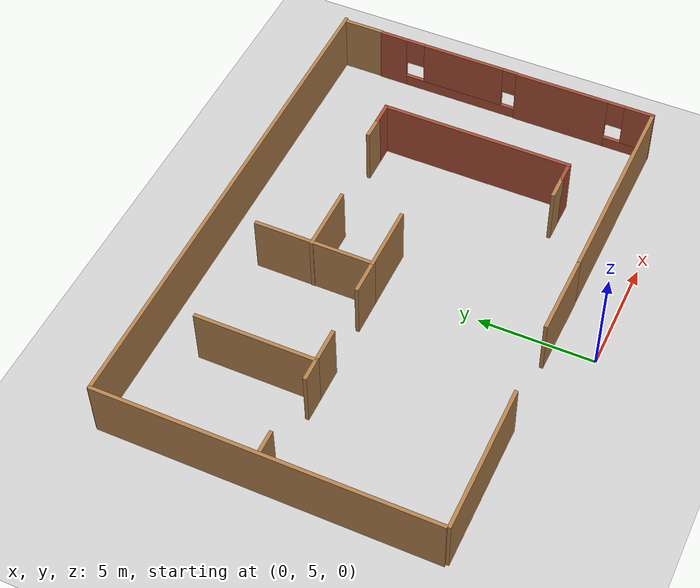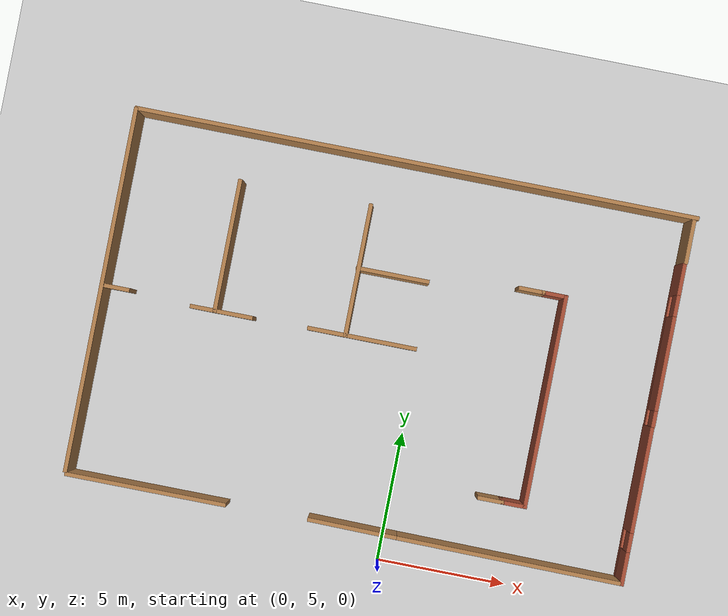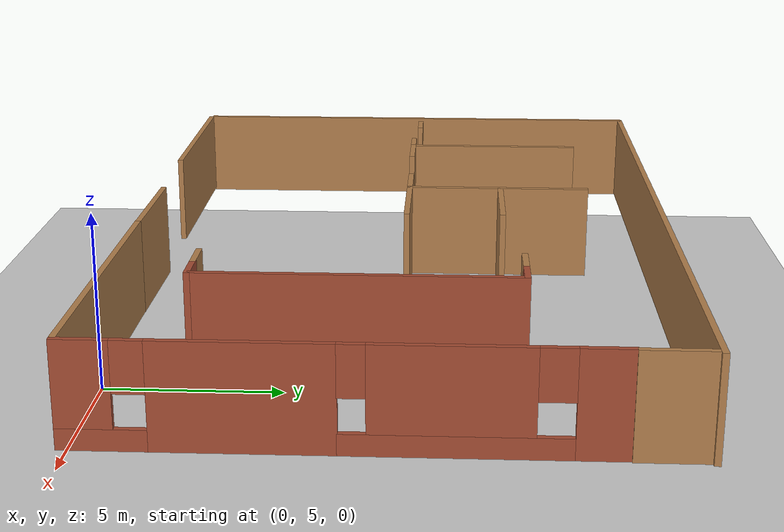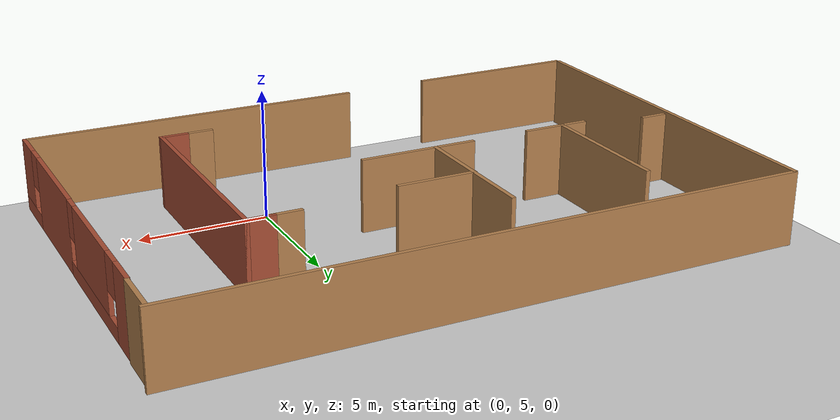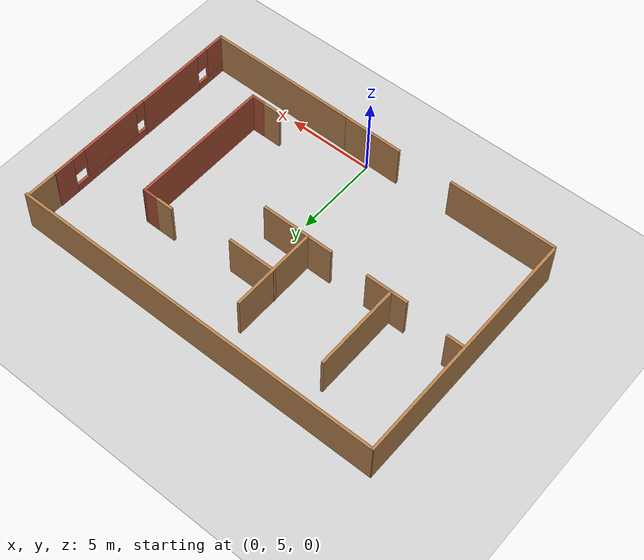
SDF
<sdf version="1.7">
 <world name="default">
  <model name="ground_plane">
   <static>1</static>
   <link name="link">
    <collision name="collision">
     <geometry><plane><normal>0 0 1</normal><size>100 100</size></plane></geometry>
     <surface><friction><ode><mu>100</mu><mu2>50</mu2></ode></friction></surface>
    </collision>
    <visual name="visual">
     <cast_shadows>0</cast_shadows>
     <geometry><plane><normal>0 0 1</normal><size>100 100</size></plane></geometry>
     <material>
      <script><uri>file://media/materials/scripts/gazebo.material</uri><name>Gazebo/Grey</name></script>
     </material>
    </visual>
   </link>
  </model>
  <model name="cafe_1st_floor">
   <link name="Wall_14">
    <pose>10.2327 -3.02422 -0.119425 0 0 -1.56964</pose>
    <visual name="Wall_14_Visual_0">
     <pose>-0.989557 0 1.25 0 -0 0</pose>
     <geometry><box><size>3.98617 0.15 2.5</size></box></geometry>
     <material>
      <script><uri>file://media/materials/scripts/gazebo.material</uri><name>Gazebo/Bricks</name></script>
      <ambient>1 1 1 1</ambient>
      <shader type="pixel"/>
     </material>
     <meta><layer>0</layer></meta>
    </visual>
    <visual name="Wall_14_Visual_2">
     <pose>2.35186 0 1.5 0 -0 0</pose>
     <geometry><box><size>1.26156 0.15 2</size></box></geometry>
     <material>
      <script><uri>file://media/materials/scripts/gazebo.material</uri><name>Gazebo/Bricks</name></script>
      <ambient>1 1 1 1</ambient>
      <shader type="pixel"/>
     </material>
     <meta><layer>0</layer></meta>
    </visual>
    <visual name="Wall_14_Visual_3">
     <pose>1.36231 0 1.9 0 -0 0</pose>
     <geometry><box><size>0.717555 0.15 1.2</size></box></geometry>
     <material>
      <script><uri>file://media/materials/scripts/gazebo.material</uri><name>Gazebo/Bricks</name></script>
      <ambient>1 1 1 1</ambient>
      <shader type="pixel"/>
     </material>
     <meta><layer>0</layer></meta>
    </visual>
    <visual name="Wall_14_Visual_1">
     <pose>1.99308 0 0.25 0 -0 0</pose>
     <geometry><box><size>1.97911 0.15 0.5</size></box></geometry>
     <material>
      <script><uri>file://media/materials/scripts/gazebo.material</uri><name>Gazebo/Bricks</name></script>
      <ambient>1 1 1 1</ambient>
      <shader type="pixel"/>
     </material>
     <meta><layer>0</layer></meta>
    </visual>
    <collision name="Wall_14_Collision_1">
     <pose>1.99308 0 0.25 0 -0 0</pose>
     <geometry><box><size>1.97911 0.15 0.5</size></box></geometry>
     <surface>
      <friction>
       <ode><mu>1</mu><mu2>1</mu2><fdir1>0 0 0</fdir1><slip1>0</slip1><slip2>0</slip2></ode>
       <torsional>
        <coefficient>1</coefficient>
        <patch_radius>0</patch_radius>
        <surface_radius>0</surface_radius>
        <use_patch_radius>1</use_patch_radius>
        <ode><slip>0</slip></ode>
       </torsional>
      </friction>
      <bounce><restitution_coefficient>0</restitution_coefficient><threshold>1e+06</threshold></bounce>
      <contact>
       <collide_without_contact>0</collide_without_contact>
       <collide_without_contact_bitmask>1</collide_without_contact_bitmask>
       <collide_bitmask>1</collide_bitmask>
       <ode>
        <soft_cfm>0</soft_cfm>
        <soft_erp>0.2</soft_erp>
        <kp>1e+13</kp>
        <kd>1</kd>
        <max_vel>0.01</max_vel>
        <min_depth>0</min_depth>
       </ode>
       <bullet>
        <split_impulse>1</split_impulse>
        <split_impulse_penetration_threshold>-0.01</split_impulse_penetration_threshold>
        <soft_cfm>0</soft_cfm>
        <soft_erp>0.2</soft_erp>
        <kp>1e+13</kp>
        <kd>1</kd>
       </bullet>
      </contact>
     </surface>
    </collision>
    <collision name="Wall_14_Collision_3">
     <pose>1.36231 0 1.9 0 -0 0</pose>
     <geometry><box><size>0.717555 0.15 1.2</size></box></geometry>
     <surface>
      <friction>
       <ode><mu>1</mu><mu2>1</mu2><fdir1>0 0 0</fdir1><slip1>0</slip1><slip2>0</slip2></ode>
       <torsional>
        <coefficient>1</coefficient>
        <patch_radius>0</patch_radius>
        <surface_radius>0</surface_radius>
        <use_patch_radius>1</use_patch_radius>
        <ode><slip>0</slip></ode>
       </torsional>
      </friction>
      <bounce><restitution_coefficient>0</restitution_coefficient><threshold>1e+06</threshold></bounce>
      <contact>
       <collide_without_contact>0</collide_without_contact>
       <collide_without_contact_bitmask>1</collide_without_contact_bitmask>
       <collide_bitmask>1</collide_bitmask>
       <ode>
        <soft_cfm>0</soft_cfm>
        <soft_erp>0.2</soft_erp>
        <kp>1e+13</kp>
        <kd>1</kd>
        <max_vel>0.01</max_vel>
        <min_depth>0</min_depth>
       </ode>
       <bullet>
        <split_impulse>1</split_impulse>
        <split_impulse_penetration_threshold>-0.01</split_impulse_penetration_threshold>
        <soft_cfm>0</soft_cfm>
        <soft_erp>0.2</soft_erp>
        <kp>1e+13</kp>
        <kd>1</kd>
       </bullet>
      </contact>
     </surface>
    </collision>
    <collision name="Wall_14_Collision_0">
     <pose>-0.989557 0 1.25 0 -0 0</pose>
     <geometry><box><size>3.98617 0.15 2.5</size></box></geometry>
     <surface>
      <friction>
       <ode><mu>1</mu><mu2>1</mu2><fdir1>0 0 0</fdir1><slip1>0</slip1><slip2>0</slip2></ode>
       <torsional>
        <coefficient>1</coefficient>
        <patch_radius>0</patch_radius>
        <surface_radius>0</surface_radius>
        <use_patch_radius>1</use_patch_radius>
        <ode><slip>0</slip></ode>
       </torsional>
      </friction>
      <bounce><restitution_coefficient>0</restitution_coefficient><threshold>1e+06</threshold></bounce>
      <contact>
       <collide_without_contact>0</collide_without_contact>
       <collide_without_contact_bitmask>1</collide_without_contact_bitmask>
       <collide_bitmask>1</collide_bitmask>
       <ode>
        <soft_cfm>0</soft_cfm>
        <soft_erp>0.2</soft_erp>
        <kp>1e+13</kp>
        <kd>1</kd>
        <max_vel>0.01</max_vel>
        <min_depth>0</min_depth>
       </ode>
       <bullet>
        <split_impulse>1</split_impulse>
        <split_impulse_penetration_threshold>-0.01</split_impulse_penetration_threshold>
        <soft_cfm>0</soft_cfm>
        <soft_erp>0.2</soft_erp>
        <kp>1e+13</kp>
        <kd>1</kd>
       </bullet>
      </contact>
     </surface>
    </collision>
    <collision name="Wall_14_Collision_2">
     <pose>2.35186 0 1.5 0 -0 0</pose>
     <geometry><box><size>1.26156 0.15 2</size></box></geometry>
     <surface>
      <friction>
       <ode><mu>1</mu><mu2>1</mu2><fdir1>0 0 0</fdir1><slip1>0</slip1><slip2>0</slip2></ode>
       <torsional>
        <coefficient>1</coefficient>
        <patch_radius>0</patch_radius>
        <surface_radius>0</surface_radius>
        <use_patch_radius>1</use_patch_radius>
        <ode><slip>0</slip></ode>
       </torsional>
      </friction>
      <bounce><restitution_coefficient>0</restitution_coefficient><threshold>1e+06</threshold></bounce>
      <contact>
       <collide_without_contact>0</collide_without_contact>
       <collide_without_contact_bitmask>1</collide_without_contact_bitmask>
       <collide_bitmask>1</collide_bitmask>
       <ode>
        <soft_cfm>0</soft_cfm>
        <soft_erp>0.2</soft_erp>
        <kp>1e+13</kp>
        <kd>1</kd>
        <max_vel>0.01</max_vel>
        <min_depth>0</min_depth>
       </ode>
       <bullet>
        <split_impulse>1</split_impulse>
        <split_impulse_penetration_threshold>-0.01</split_impulse_penetration_threshold>
        <soft_cfm>0</soft_cfm>
        <soft_erp>0.2</soft_erp>
        <kp>1e+13</kp>
        <kd>1</kd>
       </bullet>
      </contact>
     </surface>
    </collision>
   </link>
   <link name="Wall_16">
    <pose>-10.6641 0.996174 -0.124735 0 -0 1.57137</pose>
    <inertial>
     <inertia><ixx>0</ixx><ixy>0</ixy><ixz>0</ixz><iyy>0</iyy><iyz>0</iyz><izz>0</izz></inertia>
     <mass>0</mass>
    </inertial>
    <visual name="Wall_16_Visual">
     <pose>0 0 1.25 0 -0 0</pose>
     <geometry><box><size>13.6803 0.15 2.54067</size></box></geometry>
     <material>
      <script><uri>file://media/materials/scripts/gazebo.material</uri><name>Gazebo/Wood</name></script>
      <ambient>1 1 1 1</ambient>
      <shader type="pixel"/>
      <emissive>0 0 0 1</emissive>
     </material>
     <meta><layer>0</layer></meta>
    </visual>
    <collision name="Wall_16_Collision">
     <pose>0 0 1.25 0 -0 0</pose>
     <geometry><box><size>13.6803 0.15 2.54067</size></box></geometry>
     <surface>
      <friction>
       <ode><mu>1</mu><mu2>1</mu2><fdir1>0 0 0</fdir1><slip1>0</slip1><slip2>0</slip2></ode>
       <torsional>
        <coefficient>1</coefficient>
        <patch_radius>0</patch_radius>
        <surface_radius>0</surface_radius>
        <use_patch_radius>1</use_patch_radius>
        <ode><slip>0</slip></ode>
       </torsional>
      </friction>
      <bounce><restitution_coefficient>0</restitution_coefficient><threshold>1e+06</threshold></bounce>
      <contact>
       <collide_without_contact>0</collide_without_contact>
       <collide_without_contact_bitmask>1</collide_without_contact_bitmask>
       <collide_bitmask>1</collide_bitmask>
       <ode>
        <soft_cfm>0</soft_cfm>
        <soft_erp>0.2</soft_erp>
        <kp>1e+13</kp>
        <kd>1</kd>
        <max_vel>0.01</max_vel>
        <min_depth>0</min_depth>
       </ode>
       <bullet>
        <split_impulse>1</split_impulse>
        <split_impulse_penetration_threshold>-0.01</split_impulse_penetration_threshold>
        <soft_cfm>0</soft_cfm>
        <soft_erp>0.2</soft_erp>
        <kp>1e+13</kp>
        <kd>1</kd>
       </bullet>
      </contact>
     </surface>
    </collision>
   </link>
   <link name="Wall_17">
    <pose>-0.139863 7.80064 -0.111768 0 -0 0</pose>
    <inertial>
     <inertia><ixx>0</ixx><ixy>0</ixy><ixz>0</ixz><iyy>0</iyy><iyz>0</iyz><izz>0</izz></inertia>
     <mass>0</mass>
    </inertial>
    <visual name="Wall_17_Visual">
     <pose>0 0 1.25 0 -0 0</pose>
     <geometry><box><size>21.161 0.15 2.5</size></box></geometry>
     <material>
      <script><uri>file://media/materials/scripts/gazebo.material</uri><name>Gazebo/Wood</name></script>
      <ambient>1 1 1 1</ambient>
      <shader type="pixel"/>
      <emissive>0 0 0 1</emissive>
     </material>
     <meta><layer>0</layer></meta>
    </visual>
    <collision name="Wall_17_Collision">
     <pose>0 0 1.25 0 -0 0</pose>
     <geometry><box><size>21.161 0.15 2.5</size></box></geometry>
     <surface>
      <friction>
       <ode><mu>1</mu><mu2>1</mu2><fdir1>0 0 0</fdir1><slip1>0</slip1><slip2>0</slip2></ode>
       <torsional>
        <coefficient>1</coefficient>
        <patch_radius>0</patch_radius>
        <surface_radius>0</surface_radius>
        <use_patch_radius>1</use_patch_radius>
        <ode><slip>0</slip></ode>
       </torsional>
      </friction>
      <bounce><restitution_coefficient>0</restitution_coefficient><threshold>1e+06</threshold></bounce>
      <contact>
       <collide_without_contact>0</collide_without_contact>
       <collide_without_contact_bitmask>1</collide_without_contact_bitmask>
       <collide_bitmask>1</collide_bitmask>
       <ode>
        <soft_cfm>0</soft_cfm>
        <soft_erp>0.2</soft_erp>
        <kp>1e+13</kp>
        <kd>1</kd>
        <max_vel>0.01</max_vel>
        <min_depth>0</min_depth>
       </ode>
       <bullet>
        <split_impulse>1</split_impulse>
        <split_impulse_penetration_threshold>-0.01</split_impulse_penetration_threshold>
        <soft_cfm>0</soft_cfm>
        <soft_erp>0.2</soft_erp>
        <kp>1e+13</kp>
        <kd>1</kd>
       </bullet>
      </contact>
     </surface>
    </collision>
   </link>
   <link name="Wall_18">
    <pose>10.2433 3.01316 -0.114296 0 0 -1.5708</pose>
    <visual name="Wall_18_Visual_4">
     <pose>-1.47828 0 1.9 0 -0 0</pose>
     <geometry><box><size>0.8 0.15 1.2</size></box></geometry>
     <material>
      <script><uri>file://media/materials/scripts/gazebo.material</uri><name>Gazebo/Bricks</name></script>
      <ambient>1 1 1 1</ambient>
      <shader type="pixel"/>
     </material>
     <meta><layer>0</layer></meta>
    </visual>
    <visual name="Wall_18_Visual_2">
     <pose>0.693485 0 1.5 0 -0 0</pose>
     <geometry><box><size>3.54353 0.15 2</size></box></geometry>
     <material>
      <script><uri>file://media/materials/scripts/gazebo.material</uri><name>Gazebo/Bricks</name></script>
      <ambient>1 1 1 1</ambient>
      <shader type="pixel"/>
     </material>
     <meta><layer>0</layer></meta>
    </visual>
    <visual name="Wall_18_Visual_6">
     <pose>2.77013 0 1.9 0 -0 0</pose>
     <geometry><box><size>0.60975 0.15 1.2</size></box></geometry>
     <material>
      <script><uri>file://media/materials/scripts/gazebo.material</uri><name>Gazebo/Bricks</name></script>
      <ambient>1 1 1 1</ambient>
      <shader type="pixel"/>
     </material>
     <meta><layer>0</layer></meta>
    </visual>
    <visual name="Wall_18_Visual_1">
     <pose>0.59836 0 0.25 0 -0 0</pose>
     <geometry><box><size>4.95328 0.15 0.5</size></box></geometry>
     <material>
      <script><uri>file://media/materials/scripts/gazebo.material</uri><name>Gazebo/Bricks</name></script>
      <ambient>1 1 1 1</ambient>
      <shader type="pixel"/>
     </material>
     <meta><layer>0</layer></meta>
    </visual>
    <visual name="Wall_18_Visual_5">
     <pose>2.77013 0 1.9 0 -0 0</pose>
     <geometry><box><size>0.60975 0.15 1.2</size></box></geometry>
     <material>
      <script><uri>file://media/materials/scripts/gazebo.material</uri><name>Gazebo/Bricks</name></script>
      <ambient>1 1 1 1</ambient>
      <shader type="pixel"/>
     </material>
     <meta><layer>0</layer></meta>
    </visual>
    <visual name="Wall_18_Visual_3">
     <pose>0.693485 0 1.5 0 -0 0</pose>
     <geometry><box><size>3.54353 0.15 2</size></box></geometry>
     <material>
      <script><uri>file://media/materials/scripts/gazebo.material</uri><name>Gazebo/Bricks</name></script>
      <ambient>1 1 1 1</ambient>
      <shader type="pixel"/>
     </material>
     <meta><layer>0</layer></meta>
    </visual>
    <visual name="Wall_18_Visual_0">
     <pose>-2.47664 0 1.25 0 -0 0</pose>
     <geometry><box><size>1.19672 0.15 2.5</size></box></geometry>
     <material>
      <script><uri>file://media/materials/scripts/gazebo.material</uri><name>Gazebo/Bricks</name></script>
      <ambient>1 1 1 1</ambient>
      <shader type="pixel"/>
     </material>
     <meta><layer>0</layer></meta>
    </visual>
    <collision name="Wall_18_Collision_3">
     <pose>0.693485 0 1.5 0 -0 0</pose>
     <geometry><box><size>3.54353 0.15 2</size></box></geometry>
     <surface>
      <friction>
       <ode><mu>1</mu><mu2>1</mu2><fdir1>0 0 0</fdir1><slip1>0</slip1><slip2>0</slip2></ode>
       <torsional>
        <coefficient>1</coefficient>
        <patch_radius>0</patch_radius>
        <surface_radius>0</surface_radius>
        <use_patch_radius>1</use_patch_radius>
        <ode><slip>0</slip></ode>
       </torsional>
      </friction>
      <bounce><restitution_coefficient>0</restitution_coefficient><threshold>1e+06</threshold></bounce>
      <contact>
       <collide_without_contact>0</collide_without_contact>
       <collide_without_contact_bitmask>1</collide_without_contact_bitmask>
       <collide_bitmask>1</collide_bitmask>
       <ode>
        <soft_cfm>0</soft_cfm>
        <soft_erp>0.2</soft_erp>
        <kp>1e+13</kp>
        <kd>1</kd>
        <max_vel>0.01</max_vel>
        <min_depth>0</min_depth>
       </ode>
       <bullet>
        <split_impulse>1</split_impulse>
        <split_impulse_penetration_threshold>-0.01</split_impulse_penetration_threshold>
        <soft_cfm>0</soft_cfm>
        <soft_erp>0.2</soft_erp>
        <kp>1e+13</kp>
        <kd>1</kd>
       </bullet>
      </contact>
     </surface>
    </collision>
    <collision name="Wall_18_Collision_2">
     <pose>0.693485 0 1.5 0 -0 0</pose>
     <geometry><box><size>3.54353 0.15 2</size></box></geometry>
     <surface>
      <friction>
       <ode><mu>1</mu><mu2>1</mu2><fdir1>0 0 0</fdir1><slip1>0</slip1><slip2>0</slip2></ode>
       <torsional>
        <coefficient>1</coefficient>
        <patch_radius>0</patch_radius>
        <surface_radius>0</surface_radius>
        <use_patch_radius>1</use_patch_radius>
        <ode><slip>0</slip></ode>
       </torsional>
      </friction>
      <bounce><restitution_coefficient>0</restitution_coefficient><threshold>1e+06</threshold></bounce>
      <contact>
       <collide_without_contact>0</collide_without_contact>
       <collide_without_contact_bitmask>1</collide_without_contact_bitmask>
       <collide_bitmask>1</collide_bitmask>
       <ode>
        <soft_cfm>0</soft_cfm>
        <soft_erp>0.2</soft_erp>
        <kp>1e+13</kp>
        <kd>1</kd>
        <max_vel>0.01</max_vel>
        <min_depth>0</min_depth>
       </ode>
       <bullet>
        <split_impulse>1</split_impulse>
        <split_impulse_penetration_threshold>-0.01</split_impulse_penetration_threshold>
        <soft_cfm>0</soft_cfm>
        <soft_erp>0.2</soft_erp>
        <kp>1e+13</kp>
        <kd>1</kd>
       </bullet>
      </contact>
     </surface>
    </collision>
    <collision name="Wall_18_Collision_5">
     <pose>2.77013 0 1.9 0 -0 0</pose>
     <geometry><box><size>0.60975 0.15 1.2</size></box></geometry>
     <surface>
      <friction>
       <ode><mu>1</mu><mu2>1</mu2><fdir1>0 0 0</fdir1><slip1>0</slip1><slip2>0</slip2></ode>
       <torsional>
        <coefficient>1</coefficient>
        <patch_radius>0</patch_radius>
        <surface_radius>0</surface_radius>
        <use_patch_radius>1</use_patch_radius>
        <ode><slip>0</slip></ode>
       </torsional>
      </friction>
      <bounce><restitution_coefficient>0</restitution_coefficient><threshold>1e+06</threshold></bounce>
      <contact>
       <collide_without_contact>0</collide_without_contact>
       <collide_without_contact_bitmask>1</collide_without_contact_bitmask>
       <collide_bitmask>1</collide_bitmask>
       <ode>
        <soft_cfm>0</soft_cfm>
        <soft_erp>0.2</soft_erp>
        <kp>1e+13</kp>
        <kd>1</kd>
        <max_vel>0.01</max_vel>
        <min_depth>0</min_depth>
       </ode>
       <bullet>
        <split_impulse>1</split_impulse>
        <split_impulse_penetration_threshold>-0.01</split_impulse_penetration_threshold>
        <soft_cfm>0</soft_cfm>
        <soft_erp>0.2</soft_erp>
        <kp>1e+13</kp>
        <kd>1</kd>
       </bullet>
      </contact>
     </surface>
    </collision>
    <collision name="Wall_18_Collision_4">
     <pose>-1.47828 0 1.9 0 -0 0</pose>
     <geometry><box><size>0.8 0.15 1.2</size></box></geometry>
     <surface>
      <friction>
       <ode><mu>1</mu><mu2>1</mu2><fdir1>0 0 0</fdir1><slip1>0</slip1><slip2>0</slip2></ode>
       <torsional>
        <coefficient>1</coefficient>
        <patch_radius>0</patch_radius>
        <surface_radius>0</surface_radius>
        <use_patch_radius>1</use_patch_radius>
        <ode><slip>0</slip></ode>
       </torsional>
      </friction>
      <bounce><restitution_coefficient>0</restitution_coefficient><threshold>1e+06</threshold></bounce>
      <contact>
       <collide_without_contact>0</collide_without_contact>
       <collide_without_contact_bitmask>1</collide_without_contact_bitmask>
       <collide_bitmask>1</collide_bitmask>
       <ode>
        <soft_cfm>0</soft_cfm>
        <soft_erp>0.2</soft_erp>
        <kp>1e+13</kp>
        <kd>1</kd>
        <max_vel>0.01</max_vel>
        <min_depth>0</min_depth>
       </ode>
       <bullet>
        <split_impulse>1</split_impulse>
        <split_impulse_penetration_threshold>-0.01</split_impulse_penetration_threshold>
        <soft_cfm>0</soft_cfm>
        <soft_erp>0.2</soft_erp>
        <kp>1e+13</kp>
        <kd>1</kd>
       </bullet>
      </contact>
     </surface>
    </collision>
    <collision name="Wall_18_Collision_6">
     <pose>2.77013 0 1.9 0 -0 0</pose>
     <geometry><box><size>0.60975 0.15 1.2</size></box></geometry>
     <surface>
      <friction>
       <ode><mu>1</mu><mu2>1</mu2><fdir1>0 0 0</fdir1><slip1>0</slip1><slip2>0</slip2></ode>
       <torsional>
        <coefficient>1</coefficient>
        <patch_radius>0</patch_radius>
        <surface_radius>0</surface_radius>
        <use_patch_radius>1</use_patch_radius>
        <ode><slip>0</slip></ode>
       </torsional>
      </friction>
      <bounce><restitution_coefficient>0</restitution_coefficient><threshold>1e+06</threshold></bounce>
      <contact>
       <collide_without_contact>0</collide_without_contact>
       <collide_without_contact_bitmask>1</collide_without_contact_bitmask>
       <collide_bitmask>1</collide_bitmask>
       <ode>
        <soft_cfm>0</soft_cfm>
        <soft_erp>0.2</soft_erp>
        <kp>1e+13</kp>
        <kd>1</kd>
        <max_vel>0.01</max_vel>
        <min_depth>0</min_depth>
       </ode>
       <bullet>
        <split_impulse>1</split_impulse>
        <split_impulse_penetration_threshold>-0.01</split_impulse_penetration_threshold>
        <soft_cfm>0</soft_cfm>
        <soft_erp>0.2</soft_erp>
        <kp>1e+13</kp>
        <kd>1</kd>
       </bullet>
      </contact>
     </surface>
    </collision>
    <collision name="Wall_18_Collision_0">
     <pose>-2.47664 0 1.25 0 -0 0</pose>
     <geometry><box><size>1.19672 0.15 2.5</size></box></geometry>
     <surface>
      <friction>
       <ode><mu>1</mu><mu2>1</mu2><fdir1>0 0 0</fdir1><slip1>0</slip1><slip2>0</slip2></ode>
       <torsional>
        <coefficient>1</coefficient>
        <patch_radius>0</patch_radius>
        <surface_radius>0</surface_radius>
        <use_patch_radius>1</use_patch_radius>
        <ode><slip>0</slip></ode>
       </torsional>
      </friction>
      <bounce><restitution_coefficient>0</restitution_coefficient><threshold>1e+06</threshold></bounce>
      <contact>
       <collide_without_contact>0</collide_without_contact>
       <collide_without_contact_bitmask>1</collide_without_contact_bitmask>
       <collide_bitmask>1</collide_bitmask>
       <ode>
        <soft_cfm>0</soft_cfm>
        <soft_erp>0.2</soft_erp>
        <kp>1e+13</kp>
        <kd>1</kd>
        <max_vel>0.01</max_vel>
        <min_depth>0</min_depth>
       </ode>
       <bullet>
        <split_impulse>1</split_impulse>
        <split_impulse_penetration_threshold>-0.01</split_impulse_penetration_threshold>
        <soft_cfm>0</soft_cfm>
        <soft_erp>0.2</soft_erp>
        <kp>1e+13</kp>
        <kd>1</kd>
       </bullet>
      </contact>
     </surface>
    </collision>
    <collision name="Wall_18_Collision_1">
     <pose>0.59836 0 0.25 0 -0 0</pose>
     <geometry><box><size>4.95328 0.15 0.5</size></box></geometry>
     <surface>
      <friction>
       <ode><mu>1</mu><mu2>1</mu2><fdir1>0 0 0</fdir1><slip1>0</slip1><slip2>0</slip2></ode>
       <torsional>
        <coefficient>1</coefficient>
        <patch_radius>0</patch_radius>
        <surface_radius>0</surface_radius>
        <use_patch_radius>1</use_patch_radius>
        <ode><slip>0</slip></ode>
       </torsional>
      </friction>
      <bounce><restitution_coefficient>0</restitution_coefficient><threshold>1e+06</threshold></bounce>
      <contact>
       <collide_without_contact>0</collide_without_contact>
       <collide_without_contact_bitmask>1</collide_without_contact_bitmask>
       <collide_bitmask>1</collide_bitmask>
       <ode>
        <soft_cfm>0</soft_cfm>
        <soft_erp>0.2</soft_erp>
        <kp>1e+13</kp>
        <kd>1</kd>
        <max_vel>0.01</max_vel>
        <min_depth>0</min_depth>
       </ode>
       <bullet>
        <split_impulse>1</split_impulse>
        <split_impulse_penetration_threshold>-0.01</split_impulse_penetration_threshold>
        <soft_cfm>0</soft_cfm>
        <soft_erp>0.2</soft_erp>
        <kp>1e+13</kp>
        <kd>1</kd>
       </bullet>
      </contact>
     </surface>
    </collision>
   </link>
   <link name="Wall_24">
    <pose>10.2729 6.95344 -0.114012 0 0 -1.5708</pose>
    <inertial>
     <inertia><ixx>0</ixx><ixy>0</ixy><ixz>0</ixz><iyy>0</iyy><iyz>0</iyz><izz>0</izz></inertia>
     <mass>0</mass>
    </inertial>
    <visual name="Wall_24_Visual">
     <pose>0 0 1.25 0 -0 0</pose>
     <geometry><box><size>1.77453 0.15 2.5</size></box></geometry>
     <material>
      <script><uri>file://media/materials/scripts/gazebo.material</uri><name>Gazebo/Wood</name></script>
      <ambient>1 1 1 1</ambient>
      <shader type="pixel"/>
     </material>
     <meta><layer>0</layer></meta>
    </visual>
    <collision name="Wall_24_Collision">
     <pose>0 0 1.25 0 -0 0</pose>
     <geometry><box><size>1.77453 0.15 2.5</size></box></geometry>
     <surface>
      <friction>
       <ode><mu>1</mu><mu2>1</mu2><fdir1>0 0 0</fdir1><slip1>0</slip1><slip2>0</slip2></ode>
       <torsional>
        <coefficient>1</coefficient>
        <patch_radius>0</patch_radius>
        <surface_radius>0</surface_radius>
        <use_patch_radius>1</use_patch_radius>
        <ode><slip>0</slip></ode>
       </torsional>
      </friction>
      <bounce><restitution_coefficient>0</restitution_coefficient><threshold>1e+06</threshold></bounce>
      <contact>
       <collide_without_contact>0</collide_without_contact>
       <collide_without_contact_bitmask>1</collide_without_contact_bitmask>
       <collide_bitmask>1</collide_bitmask>
       <ode>
        <soft_cfm>0</soft_cfm>
        <soft_erp>0.2</soft_erp>
        <kp>1e+13</kp>
        <kd>1</kd>
        <max_vel>0.01</max_vel>
        <min_depth>0</min_depth>
       </ode>
       <bullet>
        <split_impulse>1</split_impulse>
        <split_impulse_penetration_threshold>-0.01</split_impulse_penetration_threshold>
        <soft_cfm>0</soft_cfm>
        <soft_erp>0.2</soft_erp>
        <kp>1e+13</kp>
        <kd>1</kd>
       </bullet>
      </contact>
     </surface>
    </collision>
   </link>
   <link name="Wall_26">
    <pose>-6.3931 3.4684 0 0 0 -1.5708</pose>
    <visual name="Wall_26_Visual">
     <pose>0 0 1.25 0 -0 0</pose>
     <geometry><box><size>5 0.15 2.5</size></box></geometry>
     <material>
      <script><uri>file://media/materials/scripts/gazebo.material</uri><name>Gazebo/Wood</name></script>
      <ambient>1 1 1 1</ambient>
      <shader type="pixel"/>
     </material>
     <meta><layer>0</layer></meta>
    </visual>
    <collision name="Wall_26_Collision">
     <pose>0 0 1.25 0 -0 0</pose>
     <geometry><box><size>5 0.15 2.5</size></box></geometry>
     <surface>
      <friction>
       <ode><mu>1</mu><mu2>1</mu2><fdir1>0 0 0</fdir1><slip1>0</slip1><slip2>0</slip2></ode>
       <torsional>
        <coefficient>1</coefficient>
        <patch_radius>0</patch_radius>
        <surface_radius>0</surface_radius>
        <use_patch_radius>1</use_patch_radius>
        <ode><slip>0</slip></ode>
       </torsional>
      </friction>
      <bounce><restitution_coefficient>0</restitution_coefficient><threshold>1e+06</threshold></bounce>
      <contact>
       <collide_without_contact>0</collide_without_contact>
       <collide_without_contact_bitmask>1</collide_without_contact_bitmask>
       <collide_bitmask>1</collide_bitmask>
       <ode>
        <soft_cfm>0</soft_cfm>
        <soft_erp>0.2</soft_erp>
        <kp>1e+13</kp>
        <kd>1</kd>
        <max_vel>0.01</max_vel>
        <min_depth>0</min_depth>
       </ode>
       <bullet>
        <split_impulse>1</split_impulse>
        <split_impulse_penetration_threshold>-0.01</split_impulse_penetration_threshold>
        <soft_cfm>0</soft_cfm>
        <soft_erp>0.2</soft_erp>
        <kp>1e+13</kp>
        <kd>1</kd>
       </bullet>
      </contact>
     </surface>
    </collision>
   </link>
   <link name="Wall_30">
    <pose>-6.8181 1.0434 0 0 -0 3.14159</pose>
    <visual name="Wall_30_Visual">
     <pose>0 0 1.25 0 -0 0</pose>
     <geometry><box><size>1 0.15 2.5</size></box></geometry>
     <material>
      <script><uri>file://media/materials/scripts/gazebo.material</uri><name>Gazebo/Wood</name></script>
      <ambient>1 1 1 1</ambient>
      <shader type="pixel"/>
     </material>
     <meta><layer>0</layer></meta>
    </visual>
    <collision name="Wall_30_Collision">
     <pose>0 0 1.25 0 -0 0</pose>
     <geometry><box><size>1 0.15 2.5</size></box></geometry>
     <surface>
      <friction>
       <ode><mu>1</mu><mu2>1</mu2><fdir1>0 0 0</fdir1><slip1>0</slip1><slip2>0</slip2></ode>
       <torsional>
        <coefficient>1</coefficient>
        <patch_radius>0</patch_radius>
        <surface_radius>0</surface_radius>
        <use_patch_radius>1</use_patch_radius>
        <ode><slip>0</slip></ode>
       </torsional>
      </friction>
      <bounce><restitution_coefficient>0</restitution_coefficient><threshold>1e+06</threshold></bounce>
      <contact>
       <collide_without_contact>0</collide_without_contact>
       <collide_without_contact_bitmask>1</collide_without_contact_bitmask>
       <collide_bitmask>1</collide_bitmask>
       <ode>
        <soft_cfm>0</soft_cfm>
        <soft_erp>0.2</soft_erp>
        <kp>1e+13</kp>
        <kd>1</kd>
        <max_vel>0.01</max_vel>
        <min_depth>0</min_depth>
       </ode>
       <bullet>
        <split_impulse>1</split_impulse>
        <split_impulse_penetration_threshold>-0.01</split_impulse_penetration_threshold>
        <soft_cfm>0</soft_cfm>
        <soft_erp>0.2</soft_erp>
        <kp>1e+13</kp>
        <kd>1</kd>
       </bullet>
      </contact>
     </surface>
    </collision>
   </link>
   <link name="Wall_34">
    <pose>-10.1294 1.17741 -0.171803 0 -0 0</pose>
    <inertial>
     <inertia><ixx>0</ixx><ixy>0</ixy><ixz>0</ixz><iyy>0</iyy><iyz>0</iyz><izz>0</izz></inertia>
     <mass>0</mass>
    </inertial>
    <visual name="Wall_34_Visual">
     <pose>0 0 1.25 0 -0 0</pose>
     <geometry><box><size>1 0.15 2.47285</size></box></geometry>
     <material>
      <script><uri>file://media/materials/scripts/gazebo.material</uri><name>Gazebo/Wood</name></script>
      <ambient>1 1 1 1</ambient>
      <shader type="pixel"/>
      <emissive>0 0 0 1</emissive>
     </material>
     <meta><layer>0</layer></meta>
    </visual>
    <collision name="Wall_34_Collision">
     <pose>0 0 1.25 0 -0 0</pose>
     <geometry><box><size>1 0.15 2.47285</size></box></geometry>
     <surface>
      <friction>
       <ode><mu>1</mu><mu2>1</mu2><fdir1>0 0 0</fdir1><slip1>0</slip1><slip2>0</slip2></ode>
       <torsional>
        <coefficient>1</coefficient>
        <patch_radius>0</patch_radius>
        <surface_radius>0</surface_radius>
        <use_patch_radius>1</use_patch_radius>
        <ode><slip>0</slip></ode>
       </torsional>
      </friction>
      <bounce><restitution_coefficient>0</restitution_coefficient><threshold>1e+06</threshold></bounce>
      <contact>
       <collide_without_contact>0</collide_without_contact>
       <collide_without_contact_bitmask>1</collide_without_contact_bitmask>
       <collide_bitmask>1</collide_bitmask>
       <ode>
        <soft_cfm>0</soft_cfm>
        <soft_erp>0.2</soft_erp>
        <kp>1e+13</kp>
        <kd>1</kd>
        <max_vel>0.01</max_vel>
        <min_depth>0</min_depth>
       </ode>
       <bullet>
        <split_impulse>1</split_impulse>
        <split_impulse_penetration_threshold>-0.01</split_impulse_penetration_threshold>
        <soft_cfm>0</soft_cfm>
        <soft_erp>0.2</soft_erp>
        <kp>1e+13</kp>
        <kd>1</kd>
       </bullet>
      </contact>
     </surface>
    </collision>
   </link>
   <link name="Wall_39">
    <pose>-1.50748 3.51041 0 0 0 -1.5708</pose>
    <visual name="Wall_39_Visual">
     <pose>0 0 1.25 0 -0 0</pose>
     <geometry><box><size>5 0.15 2.5</size></box></geometry>
     <material>
      <script><uri>file://media/materials/scripts/gazebo.material</uri><name>Gazebo/Wood</name></script>
      <ambient>1 1 1 1</ambient>
      <shader type="pixel"/>
     </material>
     <meta><layer>0</layer></meta>
    </visual>
    <collision name="Wall_39_Collision">
     <pose>0 0 1.25 0 -0 0</pose>
     <geometry><box><size>5 0.15 2.5</size></box></geometry>
     <surface>
      <friction>
       <ode><mu>1</mu><mu2>1</mu2><fdir1>0 0 0</fdir1><slip1>0</slip1><slip2>0</slip2></ode>
       <torsional>
        <coefficient>1</coefficient>
        <patch_radius>0</patch_radius>
        <surface_radius>0</surface_radius>
        <use_patch_radius>1</use_patch_radius>
        <ode><slip>0</slip></ode>
       </torsional>
      </friction>
      <bounce><restitution_coefficient>0</restitution_coefficient><threshold>1e+06</threshold></bounce>
      <contact>
       <collide_without_contact>0</collide_without_contact>
       <collide_without_contact_bitmask>1</collide_without_contact_bitmask>
       <collide_bitmask>1</collide_bitmask>
       <ode>
        <soft_cfm>0</soft_cfm>
        <soft_erp>0.2</soft_erp>
        <kp>1e+13</kp>
        <kd>1</kd>
        <max_vel>0.01</max_vel>
        <min_depth>0</min_depth>
       </ode>
       <bullet>
        <split_impulse>1</split_impulse>
        <split_impulse_penetration_threshold>-0.01</split_impulse_penetration_threshold>
        <soft_cfm>0</soft_cfm>
        <soft_erp>0.2</soft_erp>
        <kp>1e+13</kp>
        <kd>1</kd>
       </bullet>
      </contact>
     </surface>
    </collision>
   </link>
   <link name="Wall_40">
    <pose>-2.18248 1.0854 0 0 -0 3.14159</pose>
    <visual name="Wall_40_Visual">
     <pose>0 0 1.25 0 -0 0</pose>
     <geometry><box><size>1.5 0.15 2.5</size></box></geometry>
     <material>
      <script><uri>file://media/materials/scripts/gazebo.material</uri><name>Gazebo/Wood</name></script>
      <ambient>1 1 1 1</ambient>
      <shader type="pixel"/>
     </material>
     <meta><layer>0</layer></meta>
    </visual>
    <collision name="Wall_40_Collision">
     <pose>0 0 1.25 0 -0 0</pose>
     <geometry><box><size>1.5 0.15 2.5</size></box></geometry>
     <surface>
      <friction>
       <ode><mu>1</mu><mu2>1</mu2><fdir1>0 0 0</fdir1><slip1>0</slip1><slip2>0</slip2></ode>
       <torsional>
        <coefficient>1</coefficient>
        <patch_radius>0</patch_radius>
        <surface_radius>0</surface_radius>
        <use_patch_radius>1</use_patch_radius>
        <ode><slip>0</slip></ode>
       </torsional>
      </friction>
      <bounce><restitution_coefficient>0</restitution_coefficient><threshold>1e+06</threshold></bounce>
      <contact>
       <collide_without_contact>0</collide_without_contact>
       <collide_without_contact_bitmask>1</collide_without_contact_bitmask>
       <collide_bitmask>1</collide_bitmask>
       <ode>
        <soft_cfm>0</soft_cfm>
        <soft_erp>0.2</soft_erp>
        <kp>1e+13</kp>
        <kd>1</kd>
        <max_vel>0.01</max_vel>
        <min_depth>0</min_depth>
       </ode>
       <bullet>
        <split_impulse>1</split_impulse>
        <split_impulse_penetration_threshold>-0.01</split_impulse_penetration_threshold>
        <soft_cfm>0</soft_cfm>
        <soft_erp>0.2</soft_erp>
        <kp>1e+13</kp>
        <kd>1</kd>
       </bullet>
      </contact>
     </surface>
    </collision>
   </link>
   <link name="Wall_42">
    <pose>-5.7181 1.0434 0 0 -0 0</pose>
    <visual name="Wall_42_Visual">
     <pose>0 0 1.25 0 -0 0</pose>
     <geometry><box><size>1.5 0.15 2.5</size></box></geometry>
     <material>
      <script><uri>file://media/materials/scripts/gazebo.material</uri><name>Gazebo/Wood</name></script>
      <ambient>1 1 1 1</ambient>
      <shader type="pixel"/>
     </material>
     <meta><layer>0</layer></meta>
    </visual>
    <collision name="Wall_42_Collision">
     <pose>0 0 1.25 0 -0 0</pose>
     <geometry><box><size>1.5 0.15 2.5</size></box></geometry>
     <surface>
      <friction>
       <ode><mu>1</mu><mu2>1</mu2><fdir1>0 0 0</fdir1><slip1>0</slip1><slip2>0</slip2></ode>
       <torsional>
        <coefficient>1</coefficient>
        <patch_radius>0</patch_radius>
        <surface_radius>0</surface_radius>
        <use_patch_radius>1</use_patch_radius>
        <ode><slip>0</slip></ode>
       </torsional>
      </friction>
      <bounce><restitution_coefficient>0</restitution_coefficient><threshold>1e+06</threshold></bounce>
      <contact>
       <collide_without_contact>0</collide_without_contact>
       <collide_without_contact_bitmask>1</collide_without_contact_bitmask>
       <collide_bitmask>1</collide_bitmask>
       <ode>
        <soft_cfm>0</soft_cfm>
        <soft_erp>0.2</soft_erp>
        <kp>1e+13</kp>
        <kd>1</kd>
        <max_vel>0.01</max_vel>
        <min_depth>0</min_depth>
       </ode>
       <bullet>
        <split_impulse>1</split_impulse>
        <split_impulse_penetration_threshold>-0.01</split_impulse_penetration_threshold>
        <soft_cfm>0</soft_cfm>
        <soft_erp>0.2</soft_erp>
        <kp>1e+13</kp>
        <kd>1</kd>
       </bullet>
      </contact>
     </surface>
    </collision>
   </link>
   <link name="Wall_55">
    <pose>4.9079 4.0236 0 0 -0 3.14159</pose>
    <visual name="Wall_55_Visual">
     <pose>0 0 1.25 0 -0 0</pose>
     <geometry><box><size>1 0.15 2.5</size></box></geometry>
     <material>
      <script><uri>file://media/materials/scripts/gazebo.material</uri><name>Gazebo/Wood</name></script>
      <ambient>1 1 1 1</ambient>
      <shader type="pixel"/>
     </material>
     <meta><layer>0</layer></meta>
    </visual>
    <collision name="Wall_55_Collision">
     <pose>0 0 1.25 0 -0 0</pose>
     <geometry><box><size>1 0.15 2.5</size></box></geometry>
     <surface>
      <friction>
       <ode><mu>1</mu><mu2>1</mu2><fdir1>0 0 0</fdir1><slip1>0</slip1><slip2>0</slip2></ode>
       <torsional>
        <coefficient>1</coefficient>
        <patch_radius>0</patch_radius>
        <surface_radius>0</surface_radius>
        <use_patch_radius>1</use_patch_radius>
        <ode><slip>0</slip></ode>
       </torsional>
      </friction>
      <bounce><restitution_coefficient>0</restitution_coefficient><threshold>1e+06</threshold></bounce>
      <contact>
       <collide_without_contact>0</collide_without_contact>
       <collide_without_contact_bitmask>1</collide_without_contact_bitmask>
       <collide_bitmask>1</collide_bitmask>
       <ode>
        <soft_cfm>0</soft_cfm>
        <soft_erp>0.2</soft_erp>
        <kp>1e+13</kp>
        <kd>1</kd>
        <max_vel>0.01</max_vel>
        <min_depth>0</min_depth>
       </ode>
       <bullet>
        <split_impulse>1</split_impulse>
        <split_impulse_penetration_threshold>-0.01</split_impulse_penetration_threshold>
        <soft_cfm>0</soft_cfm>
        <soft_erp>0.2</soft_erp>
        <kp>1e+13</kp>
        <kd>1</kd>
       </bullet>
      </contact>
     </surface>
    </collision>
   </link>
   <link name="Wall_56">
    <pose>5.9812 -5.89825 -0.112768 0 -0 3.13384</pose>
    <inertial>
     <inertia><ixx>0</ixx><ixy>0</ixy><ixz>0</ixz><iyy>0</iyy><iyz>0</iyz><izz>0</izz></inertia>
     <mass>0</mass>
    </inertial>
    <visual name="Wall_56_Visual">
     <pose>0 0 1.25 0 -0 0</pose>
     <geometry><box><size>8.41554 0.15 2.5</size></box></geometry>
     <material>
      <script><uri>file://media/materials/scripts/gazebo.material</uri><name>Gazebo/Wood</name></script>
      <ambient>1 1 1 1</ambient>
      <shader type="pixel"/>
     </material>
     <meta><layer>0</layer></meta>
    </visual>
    <collision name="Wall_56_Collision">
     <pose>0 0 1.25 0 -0 0</pose>
     <geometry><box><size>8.41554 0.15 2.5</size></box></geometry>
     <surface>
      <friction>
       <ode><mu>1</mu><mu2>1</mu2><fdir1>0 0 0</fdir1><slip1>0</slip1><slip2>0</slip2></ode>
       <torsional>
        <coefficient>1</coefficient>
        <patch_radius>0</patch_radius>
        <surface_radius>0</surface_radius>
        <use_patch_radius>1</use_patch_radius>
        <ode><slip>0</slip></ode>
       </torsional>
      </friction>
      <bounce><restitution_coefficient>0</restitution_coefficient><threshold>1e+06</threshold></bounce>
      <contact>
       <collide_without_contact>0</collide_without_contact>
       <collide_without_contact_bitmask>1</collide_without_contact_bitmask>
       <collide_bitmask>1</collide_bitmask>
       <ode>
        <soft_cfm>0</soft_cfm>
        <soft_erp>0.2</soft_erp>
        <kp>1e+13</kp>
        <kd>1</kd>
        <max_vel>0.01</max_vel>
        <min_depth>0</min_depth>
       </ode>
       <bullet>
        <split_impulse>1</split_impulse>
        <split_impulse_penetration_threshold>-0.01</split_impulse_penetration_threshold>
        <soft_cfm>0</soft_cfm>
        <soft_erp>0.2</soft_erp>
        <kp>1e+13</kp>
        <kd>1</kd>
       </bullet>
      </contact>
     </surface>
    </collision>
   </link>
   <link name="Wall_59">
    <pose>4.9079 -3.8264 0 0 -0 0</pose>
    <visual name="Wall_59_Visual">
     <pose>0 0 1.25 0 -0 0</pose>
     <geometry><box><size>1 0.15 2.5</size></box></geometry>
     <material>
      <script><uri>file://media/materials/scripts/gazebo.material</uri><name>Gazebo/Wood</name></script>
      <ambient>1 1 1 1</ambient>
      <shader type="pixel"/>
     </material>
     <meta><layer>0</layer></meta>
    </visual>
    <collision name="Wall_59_Collision">
     <pose>0 0 1.25 0 -0 0</pose>
     <geometry><box><size>1 0.15 2.5</size></box></geometry>
     <surface>
      <friction>
       <ode><mu>1</mu><mu2>1</mu2><fdir1>0 0 0</fdir1><slip1>0</slip1><slip2>0</slip2></ode>
       <torsional>
        <coefficient>1</coefficient>
        <patch_radius>0</patch_radius>
        <surface_radius>0</surface_radius>
        <use_patch_radius>1</use_patch_radius>
        <ode><slip>0</slip></ode>
       </torsional>
      </friction>
      <bounce><restitution_coefficient>0</restitution_coefficient><threshold>1e+06</threshold></bounce>
      <contact>
       <collide_without_contact>0</collide_without_contact>
       <collide_without_contact_bitmask>1</collide_without_contact_bitmask>
       <collide_bitmask>1</collide_bitmask>
       <ode>
        <soft_cfm>0</soft_cfm>
        <soft_erp>0.2</soft_erp>
        <kp>1e+13</kp>
        <kd>1</kd>
        <max_vel>0.01</max_vel>
        <min_depth>0</min_depth>
       </ode>
       <bullet>
        <split_impulse>1</split_impulse>
        <split_impulse_penetration_threshold>-0.01</split_impulse_penetration_threshold>
        <soft_cfm>0</soft_cfm>
        <soft_erp>0.2</soft_erp>
        <kp>1e+13</kp>
        <kd>1</kd>
       </bullet>
      </contact>
     </surface>
    </collision>
   </link>
   <link name="Wall_61">
    <pose>5.7579 4.0236 0 0 -0 0</pose>
    <visual name="Wall_61_Visual">
     <pose>0 0 1.25 0 -0 0</pose>
     <geometry><box><size>1 0.15 2.5</size></box></geometry>
     <material>
      <script><uri>file://media/materials/scripts/gazebo.material</uri><name>Gazebo/Bricks</name></script>
      <ambient>1 1 1 1</ambient>
      <shader type="pixel"/>
     </material>
     <meta><layer>0</layer></meta>
    </visual>
    <collision name="Wall_61_Collision">
     <pose>0 0 1.25 0 -0 0</pose>
     <geometry><box><size>1 0.15 2.5</size></box></geometry>
     <surface>
      <friction>
       <ode><mu>1</mu><mu2>1</mu2><fdir1>0 0 0</fdir1><slip1>0</slip1><slip2>0</slip2></ode>
       <torsional>
        <coefficient>1</coefficient>
        <patch_radius>0</patch_radius>
        <surface_radius>0</surface_radius>
        <use_patch_radius>1</use_patch_radius>
        <ode><slip>0</slip></ode>
       </torsional>
      </friction>
      <bounce><restitution_coefficient>0</restitution_coefficient><threshold>1e+06</threshold></bounce>
      <contact>
       <collide_without_contact>0</collide_without_contact>
       <collide_without_contact_bitmask>1</collide_without_contact_bitmask>
       <collide_bitmask>1</collide_bitmask>
       <ode>
        <soft_cfm>0</soft_cfm>
        <soft_erp>0.2</soft_erp>
        <kp>1e+13</kp>
        <kd>1</kd>
        <max_vel>0.01</max_vel>
        <min_depth>0</min_depth>
       </ode>
       <bullet>
        <split_impulse>1</split_impulse>
        <split_impulse_penetration_threshold>-0.01</split_impulse_penetration_threshold>
        <soft_cfm>0</soft_cfm>
        <soft_erp>0.2</soft_erp>
        <kp>1e+13</kp>
        <kd>1</kd>
       </bullet>
      </contact>
     </surface>
    </collision>
   </link>
   <link name="Wall_62">
    <pose>6.1829 0.098601 0 0 0 -1.5708</pose>
    <visual name="Wall_62_Visual">
     <pose>0 0 1.25 0 -0 0</pose>
     <geometry><box><size>8 0.15 2.5</size></box></geometry>
     <material>
      <script><uri>file://media/materials/scripts/gazebo.material</uri><name>Gazebo/Bricks</name></script>
      <ambient>1 1 1 1</ambient>
      <shader type="pixel"/>
     </material>
     <meta><layer>0</layer></meta>
    </visual>
    <collision name="Wall_62_Collision">
     <pose>0 0 1.25 0 -0 0</pose>
     <geometry><box><size>8 0.15 2.5</size></box></geometry>
     <surface>
      <friction>
       <ode><mu>1</mu><mu2>1</mu2><fdir1>0 0 0</fdir1><slip1>0</slip1><slip2>0</slip2></ode>
       <torsional>
        <coefficient>1</coefficient>
        <patch_radius>0</patch_radius>
        <surface_radius>0</surface_radius>
        <use_patch_radius>1</use_patch_radius>
        <ode><slip>0</slip></ode>
       </torsional>
      </friction>
      <bounce><restitution_coefficient>0</restitution_coefficient><threshold>1e+06</threshold></bounce>
      <contact>
       <collide_without_contact>0</collide_without_contact>
       <collide_without_contact_bitmask>1</collide_without_contact_bitmask>
       <collide_bitmask>1</collide_bitmask>
       <ode>
        <soft_cfm>0</soft_cfm>
        <soft_erp>0.2</soft_erp>
        <kp>1e+13</kp>
        <kd>1</kd>
        <max_vel>0.01</max_vel>
        <min_depth>0</min_depth>
       </ode>
       <bullet>
        <split_impulse>1</split_impulse>
        <split_impulse_penetration_threshold>-0.01</split_impulse_penetration_threshold>
        <soft_cfm>0</soft_cfm>
        <soft_erp>0.2</soft_erp>
        <kp>1e+13</kp>
        <kd>1</kd>
       </bullet>
      </contact>
     </surface>
    </collision>
   </link>
   <link name="Wall_63">
    <pose>5.7579 -3.8264 0 0 -0 3.14159</pose>
    <visual name="Wall_63_Visual">
     <pose>0 0 1.25 0 -0 0</pose>
     <geometry><box><size>1 0.15 2.5</size></box></geometry>
     <material>
      <script><uri>file://media/materials/scripts/gazebo.material</uri><name>Gazebo/Bricks</name></script>
      <ambient>1 1 1 1</ambient>
      <shader type="pixel"/>
     </material>
     <meta><layer>0</layer></meta>
    </visual>
    <collision name="Wall_63_Collision">
     <pose>0 0 1.25 0 -0 0</pose>
     <geometry><box><size>1 0.15 2.5</size></box></geometry>
     <surface>
      <friction>
       <ode><mu>1</mu><mu2>1</mu2><fdir1>0 0 0</fdir1><slip1>0</slip1><slip2>0</slip2></ode>
       <torsional>
        <coefficient>1</coefficient>
        <patch_radius>0</patch_radius>
        <surface_radius>0</surface_radius>
        <use_patch_radius>1</use_patch_radius>
        <ode><slip>0</slip></ode>
       </torsional>
      </friction>
      <bounce><restitution_coefficient>0</restitution_coefficient><threshold>1e+06</threshold></bounce>
      <contact>
       <collide_without_contact>0</collide_without_contact>
       <collide_without_contact_bitmask>1</collide_without_contact_bitmask>
       <collide_bitmask>1</collide_bitmask>
       <ode>
        <soft_cfm>0</soft_cfm>
        <soft_erp>0.2</soft_erp>
        <kp>1e+13</kp>
        <kd>1</kd>
        <max_vel>0.01</max_vel>
        <min_depth>0</min_depth>
       </ode>
       <bullet>
        <split_impulse>1</split_impulse>
        <split_impulse_penetration_threshold>-0.01</split_impulse_penetration_threshold>
        <soft_cfm>0</soft_cfm>
        <soft_erp>0.2</soft_erp>
        <kp>1e+13</kp>
        <kd>1</kd>
       </bullet>
      </contact>
     </surface>
    </collision>
   </link>
   <link name="Wall_65">
    <pose>-0.20748 1.0854 0 0 -0 0</pose>
    <visual name="Wall_65_Visual">
     <pose>0 0 1.25 0 -0 0</pose>
     <geometry><box><size>2.75 0.15 2.5</size></box></geometry>
     <material>
      <script><uri>file://media/materials/scripts/gazebo.material</uri><name>Gazebo/Wood</name></script>
      <ambient>1 1 1 1</ambient>
      <shader type="pixel"/>
     </material>
     <meta><layer>0</layer></meta>
    </visual>
    <collision name="Wall_65_Collision">
     <pose>0 0 1.25 0 -0 0</pose>
     <geometry><box><size>2.75 0.15 2.5</size></box></geometry>
     <surface>
      <friction>
       <ode><mu>1</mu><mu2>1</mu2><fdir1>0 0 0</fdir1><slip1>0</slip1><slip2>0</slip2></ode>
       <torsional>
        <coefficient>1</coefficient>
        <patch_radius>0</patch_radius>
        <surface_radius>0</surface_radius>
        <use_patch_radius>1</use_patch_radius>
        <ode><slip>0</slip></ode>
       </torsional>
      </friction>
      <bounce><restitution_coefficient>0</restitution_coefficient><threshold>1e+06</threshold></bounce>
      <contact>
       <collide_without_contact>0</collide_without_contact>
       <collide_without_contact_bitmask>1</collide_without_contact_bitmask>
       <collide_bitmask>1</collide_bitmask>
       <ode>
        <soft_cfm>0</soft_cfm>
        <soft_erp>0.2</soft_erp>
        <kp>1e+13</kp>
        <kd>1</kd>
        <max_vel>0.01</max_vel>
        <min_depth>0</min_depth>
       </ode>
       <bullet>
        <split_impulse>1</split_impulse>
        <split_impulse_penetration_threshold>-0.01</split_impulse_penetration_threshold>
        <soft_cfm>0</soft_cfm>
        <soft_erp>0.2</soft_erp>
        <kp>1e+13</kp>
        <kd>1</kd>
       </bullet>
      </contact>
     </surface>
    </collision>
   </link>
   <link name="Wall_65_clone">
    <pose>-7.64259 -5.89846 -0.098912 0 -0 0</pose>
    <inertial>
     <inertia><ixx>0</ixx><ixy>0</ixy><ixz>0</ixz><iyy>0</iyy><iyz>0</iyz><izz>0</izz></inertia>
     <mass>0</mass>
    </inertial>
    <visual name="Wall_65_Visual">
     <pose>0 0 1.25 0 -0 0</pose>
     <geometry><box><size>6.04527 0.15 2.4677</size></box></geometry>
     <material>
      <script><uri>file://media/materials/scripts/gazebo.material</uri><name>Gazebo/Wood</name></script>
      <ambient>1 1 1 1</ambient>
      <shader type="pixel"/>
     </material>
     <meta><layer>0</layer></meta>
    </visual>
    <collision name="Wall_65_Collision">
     <pose>0 0 1.25 0 -0 0</pose>
     <geometry><box><size>6.04527 0.15 2.4677</size></box></geometry>
     <surface>
      <friction>
       <ode><mu>1</mu><mu2>1</mu2><fdir1>0 0 0</fdir1><slip1>0</slip1><slip2>0</slip2></ode>
       <torsional>
        <coefficient>1</coefficient>
        <patch_radius>0</patch_radius>
        <surface_radius>0</surface_radius>
        <use_patch_radius>1</use_patch_radius>
        <ode><slip>0</slip></ode>
       </torsional>
      </friction>
      <bounce><restitution_coefficient>0</restitution_coefficient><threshold>1e+06</threshold></bounce>
      <contact>
       <collide_without_contact>0</collide_without_contact>
       <collide_without_contact_bitmask>1</collide_without_contact_bitmask>
       <collide_bitmask>1</collide_bitmask>
       <ode>
        <soft_cfm>0</soft_cfm>
        <soft_erp>0.2</soft_erp>
        <kp>1e+13</kp>
        <kd>1</kd>
        <max_vel>0.01</max_vel>
        <min_depth>0</min_depth>
       </ode>
       <bullet>
        <split_impulse>1</split_impulse>
        <split_impulse_penetration_threshold>-0.01</split_impulse_penetration_threshold>
        <soft_cfm>0</soft_cfm>
        <soft_erp>0.2</soft_erp>
        <kp>1e+13</kp>
        <kd>1</kd>
       </bullet>
      </contact>
     </surface>
    </collision>
   </link>
   <link name="Wall_65_clone_clone">
    <pose>0.110839 -5.84619 -0.123747 0 0 -0.012302</pose>
    <inertial>
     <inertia><ixx>0</ixx><ixy>0</ixy><ixz>0</ixz><iyy>0</iyy><iyz>0</iyz><izz>0</izz></inertia>
     <mass>0</mass>
    </inertial>
    <visual name="Wall_65_Visual">
     <pose>0 0 1.25 0 -0 0</pose>
     <geometry><box><size>3.37765 0.15 2.5</size></box></geometry>
     <material>
      <script><uri>file://media/materials/scripts/gazebo.material</uri><name>Gazebo/Wood</name></script>
      <ambient>1 1 1 1</ambient>
      <shader type="pixel"/>
     </material>
     <meta><layer>0</layer></meta>
    </visual>
    <collision name="Wall_65_Collision">
     <pose>0 0 1.25 0 -0 0</pose>
     <geometry><box><size>3.37765 0.15 2.5</size></box></geometry>
     <surface>
      <friction>
       <ode><mu>1</mu><mu2>1</mu2><fdir1>0 0 0</fdir1><slip1>0</slip1><slip2>0</slip2></ode>
       <torsional>
        <coefficient>1</coefficient>
        <patch_radius>0</patch_radius>
        <surface_radius>0</surface_radius>
        <use_patch_radius>1</use_patch_radius>
        <ode><slip>0</slip></ode>
       </torsional>
      </friction>
      <bounce><restitution_coefficient>0</restitution_coefficient><threshold>1e+06</threshold></bounce>
      <contact>
       <collide_without_contact>0</collide_without_contact>
       <collide_without_contact_bitmask>1</collide_without_contact_bitmask>
       <collide_bitmask>1</collide_bitmask>
       <ode>
        <soft_cfm>0</soft_cfm>
        <soft_erp>0.2</soft_erp>
        <kp>1e+13</kp>
        <kd>1</kd>
        <max_vel>0.01</max_vel>
        <min_depth>0</min_depth>
       </ode>
       <bullet>
        <split_impulse>1</split_impulse>
        <split_impulse_penetration_threshold>-0.01</split_impulse_penetration_threshold>
        <soft_cfm>0</soft_cfm>
        <soft_erp>0.2</soft_erp>
        <kp>1e+13</kp>
        <kd>1</kd>
       </bullet>
      </contact>
     </surface>
    </collision>
   </link>
   <link name="Wall_67">
    <pose>-0.229172 3.59219 0 0 -0 0</pose>
    <visual name="Wall_67_Visual">
     <pose>0 0 1.25 0 -0 0</pose>
     <geometry><box><size>2.75 0.15 2.5</size></box></geometry>
     <material>
      <script><uri>file://media/materials/scripts/gazebo.material</uri><name>Gazebo/Wood</name></script>
      <ambient>1 1 1 1</ambient>
      <shader type="pixel"/>
     </material>
     <meta><layer>0</layer></meta>
    </visual>
    <collision name="Wall_67_Collision">
     <pose>0 0 1.25 0 -0 0</pose>
     <geometry><box><size>2.75 0.15 2.5</size></box></geometry>
     <surface>
      <friction>
       <ode><mu>1</mu><mu2>1</mu2><fdir1>0 0 0</fdir1><slip1>0</slip1><slip2>0</slip2></ode>
       <torsional>
        <coefficient>1</coefficient>
        <patch_radius>0</patch_radius>
        <surface_radius>0</surface_radius>
        <use_patch_radius>1</use_patch_radius>
        <ode><slip>0</slip></ode>
       </torsional>
      </friction>
      <bounce><restitution_coefficient>0</restitution_coefficient><threshold>1e+06</threshold></bounce>
      <contact>
       <collide_without_contact>0</collide_without_contact>
       <collide_without_contact_bitmask>1</collide_without_contact_bitmask>
       <collide_bitmask>1</collide_bitmask>
       <ode>
        <soft_cfm>0</soft_cfm>
        <soft_erp>0.2</soft_erp>
        <kp>1e+13</kp>
        <kd>1</kd>
        <max_vel>0.01</max_vel>
        <min_depth>0</min_depth>
       </ode>
       <bullet>
        <split_impulse>1</split_impulse>
        <split_impulse_penetration_threshold>-0.01</split_impulse_penetration_threshold>
        <soft_cfm>0</soft_cfm>
        <soft_erp>0.2</soft_erp>
        <kp>1e+13</kp>
        <kd>1</kd>
       </bullet>
      </contact>
     </surface>
    </collision>
   </link>
   <static>1</static>
   <pose>-1.31596 12.205 2.56567 0 -0 0</pose>
  </model>
 </world>
</sdf>
